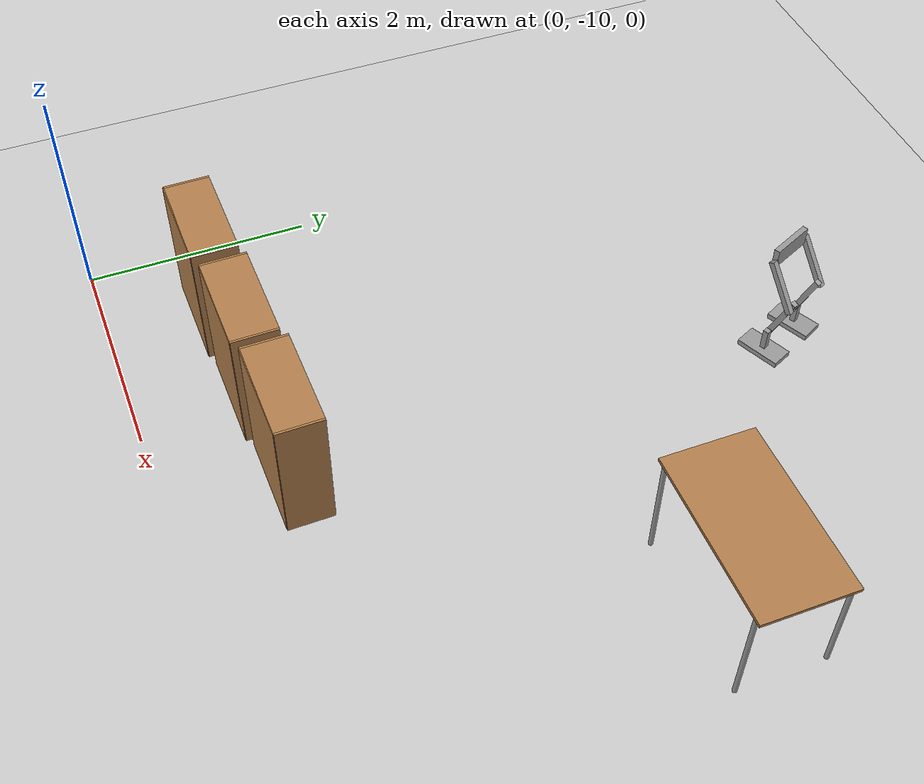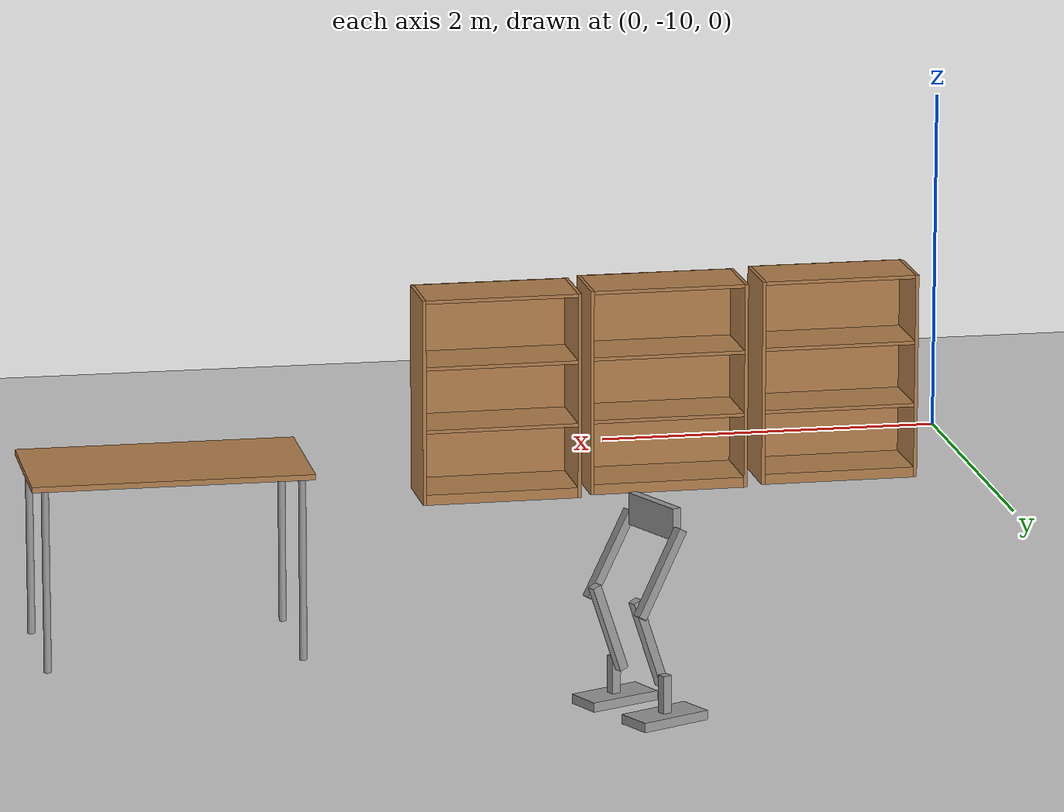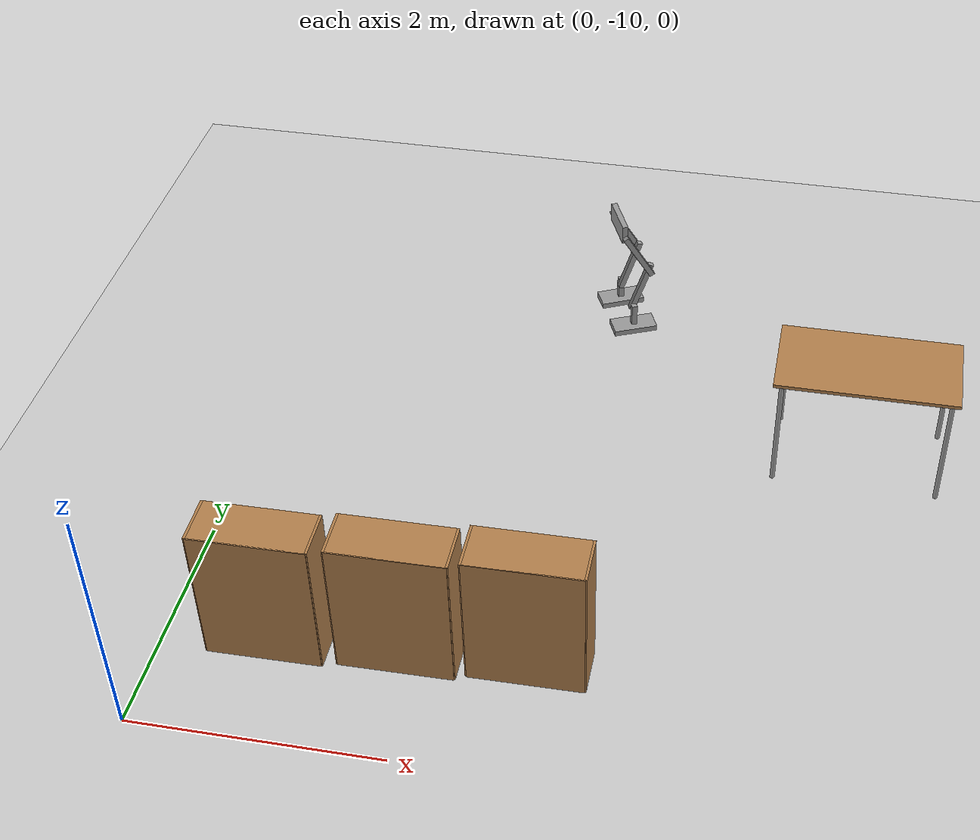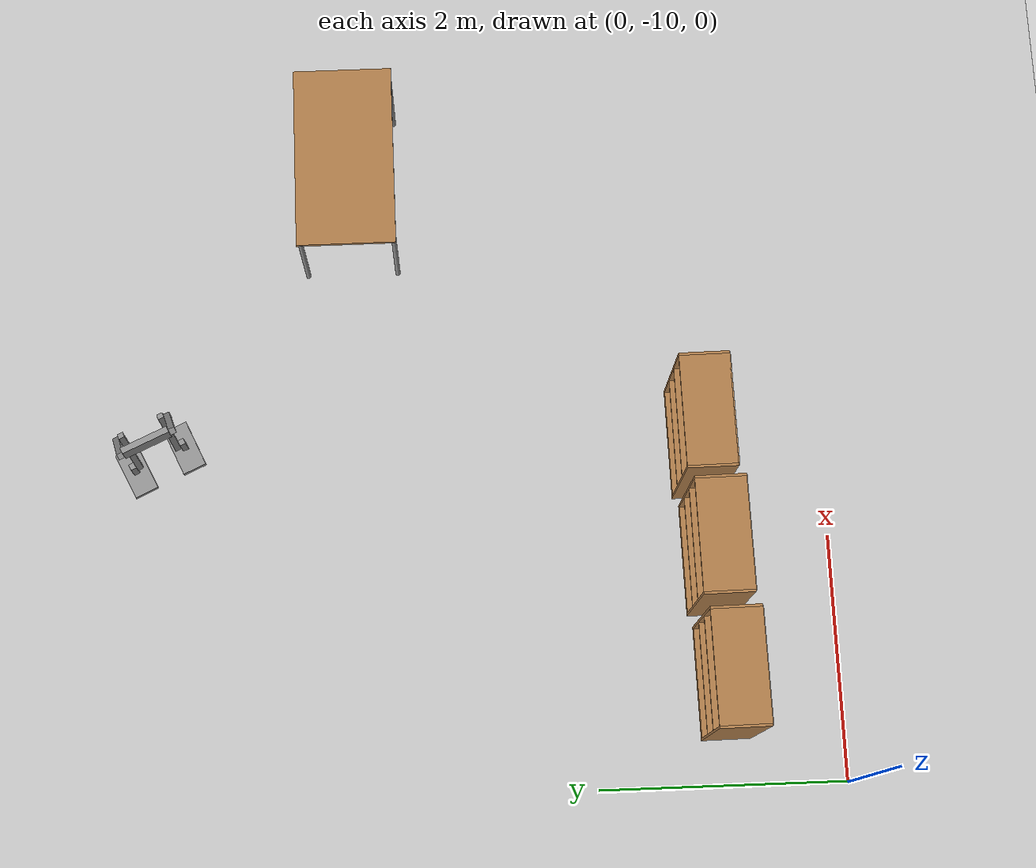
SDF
<sdf version="1.6">
 <world name="myworld">
  <model name="ground_plane">
   <static>1</static>
   <link name="link">
    <collision name="collision">
     <geometry><plane><normal>0 0 1</normal><size>100 100</size></plane></geometry>
     <surface><friction><ode><mu>100</mu><mu2>50</mu2></ode></friction></surface>
    </collision>
    <visual name="visual">
     <cast_shadows>0</cast_shadows>
     <geometry><plane><normal>0 0 1</normal><size>100 100</size></plane></geometry>
     <material>
      <script><uri>file://media/materials/scripts/gazebo.material</uri><name>Gazebo/Grey</name></script>
     </material>
    </visual>
   </link>
  </model>
  <model name="bookshelf">
   <static>1</static>
   <link name="link">
    <inertial><mass>1</mass></inertial>
    <collision name="back">
     <pose>0 0.005 0.6 0 -0 0</pose>
     <geometry><box><size>0.9 0.01 1.2</size></box></geometry>
    </collision>
    <visual name="visual1">
     <pose>0 0.005 0.6 0 -0 0</pose>
     <geometry><box><size>0.9 0.01 1.2</size></box></geometry>
     <material>
      <script><uri>file://media/materials/scripts/gazebo.material</uri><name>Gazebo/Wood</name></script>
     </material>
    </visual>
    <collision name="left_side">
     <pose>0.45 -0.195 0.6 0 -0 0</pose>
     <geometry><box><size>0.02 0.4 1.2</size></box></geometry>
    </collision>
    <visual name="visual2">
     <pose>0.45 -0.195 0.6 0 -0 0</pose>
     <geometry><box><size>0.02 0.4 1.2</size></box></geometry>
     <material>
      <script><uri>file://media/materials/scripts/gazebo.material</uri><name>Gazebo/Wood</name></script>
     </material>
    </visual>
    <collision name="right_side">
     <pose>-0.45 -0.195 0.6 0 -0 0</pose>
     <geometry><box><size>0.02 0.4 1.2</size></box></geometry>
    </collision>
    <visual name="visual3">
     <pose>-0.45 -0.195 0.6 0 -0 0</pose>
     <geometry><box><size>0.02 0.4 1.2</size></box></geometry>
     <material>
      <script><uri>file://media/materials/scripts/gazebo.material</uri><name>Gazebo/Wood</name></script>
     </material>
    </visual>
    <collision name="bottom">
     <pose>0 -0.195 0.03 0 -0 0</pose>
     <geometry><box><size>0.88 0.4 0.06</size></box></geometry>
    </collision>
    <visual name="visual4">
     <pose>0 -0.195 0.03 0 -0 0</pose>
     <geometry><box><size>0.88 0.4 0.06</size></box></geometry>
     <material>
      <script><uri>file://media/materials/scripts/gazebo.material</uri><name>Gazebo/Wood</name></script>
     </material>
    </visual>
    <collision name="top">
     <pose>0 -0.195 1.19 0 -0 0</pose>
     <geometry><box><size>0.88 0.4 0.02</size></box></geometry>
    </collision>
    <visual name="visual5">
     <pose>0 -0.195 1.19 0 -0 0</pose>
     <geometry><box><size>0.88 0.4 0.02</size></box></geometry>
     <material>
      <script><uri>file://media/materials/scripts/gazebo.material</uri><name>Gazebo/Wood</name></script>
     </material>
    </visual>
    <collision name="low_shelf">
     <pose>0 -0.195 0.43 0 -0 0</pose>
     <geometry><box><size>0.88 0.4 0.02</size></box></geometry>
    </collision>
    <visual name="visual6">
     <pose>0 -0.195 0.43 0 -0 0</pose>
     <geometry><box><size>0.88 0.4 0.02</size></box></geometry>
     <material>
      <script><uri>file://media/materials/scripts/gazebo.material</uri><name>Gazebo/Wood</name></script>
     </material>
    </visual>
    <collision name="high_shelf">
     <pose>0 -0.195 0.8 0 -0 0</pose>
     <geometry><box><size>0.88 0.4 0.02</size></box></geometry>
    </collision>
    <visual name="visual7">
     <pose>0 -0.195 0.8 0 -0 0</pose>
     <geometry><box><size>0.88 0.4 0.02</size></box></geometry>
     <material>
      <script><uri>file://media/materials/scripts/gazebo.material</uri><name>Gazebo/Wood</name></script>
     </material>
    </visual>
   </link>
   <pose>0.833883 -9.23444 0 0 0 -3.1294</pose>
  </model>
  <model name="bookshelf_clone_0">
   <static>1</static>
   <link name="link">
    <inertial><mass>1</mass></inertial>
    <collision name="back">
     <pose>0 0.005 0.6 0 -0 0</pose>
     <geometry><box><size>0.9 0.01 1.2</size></box></geometry>
    </collision>
    <visual name="visual1">
     <pose>0 0.005 0.6 0 -0 0</pose>
     <geometry><box><size>0.9 0.01 1.2</size></box></geometry>
     <material>
      <script><uri>file://media/materials/scripts/gazebo.material</uri><name>Gazebo/Wood</name></script>
     </material>
    </visual>
    <collision name="left_side">
     <pose>0.45 -0.195 0.6 0 -0 0</pose>
     <geometry><box><size>0.02 0.4 1.2</size></box></geometry>
    </collision>
    <visual name="visual2">
     <pose>0.45 -0.195 0.6 0 -0 0</pose>
     <geometry><box><size>0.02 0.4 1.2</size></box></geometry>
     <material>
      <script><uri>file://media/materials/scripts/gazebo.material</uri><name>Gazebo/Wood</name></script>
     </material>
    </visual>
    <collision name="right_side">
     <pose>-0.45 -0.195 0.6 0 -0 0</pose>
     <geometry><box><size>0.02 0.4 1.2</size></box></geometry>
    </collision>
    <visual name="visual3">
     <pose>-0.45 -0.195 0.6 0 -0 0</pose>
     <geometry><box><size>0.02 0.4 1.2</size></box></geometry>
     <material>
      <script><uri>file://media/materials/scripts/gazebo.material</uri><name>Gazebo/Wood</name></script>
     </material>
    </visual>
    <collision name="bottom">
     <pose>0 -0.195 0.03 0 -0 0</pose>
     <geometry><box><size>0.88 0.4 0.06</size></box></geometry>
    </collision>
    <visual name="visual4">
     <pose>0 -0.195 0.03 0 -0 0</pose>
     <geometry><box><size>0.88 0.4 0.06</size></box></geometry>
     <material>
      <script><uri>file://media/materials/scripts/gazebo.material</uri><name>Gazebo/Wood</name></script>
     </material>
    </visual>
    <collision name="top">
     <pose>0 -0.195 1.19 0 -0 0</pose>
     <geometry><box><size>0.88 0.4 0.02</size></box></geometry>
    </collision>
    <visual name="visual5">
     <pose>0 -0.195 1.19 0 -0 0</pose>
     <geometry><box><size>0.88 0.4 0.02</size></box></geometry>
     <material>
      <script><uri>file://media/materials/scripts/gazebo.material</uri><name>Gazebo/Wood</name></script>
     </material>
    </visual>
    <collision name="low_shelf">
     <pose>0 -0.195 0.43 0 -0 0</pose>
     <geometry><box><size>0.88 0.4 0.02</size></box></geometry>
    </collision>
    <visual name="visual6">
     <pose>0 -0.195 0.43 0 -0 0</pose>
     <geometry><box><size>0.88 0.4 0.02</size></box></geometry>
     <material>
      <script><uri>file://media/materials/scripts/gazebo.material</uri><name>Gazebo/Wood</name></script>
     </material>
    </visual>
    <collision name="high_shelf">
     <pose>0 -0.195 0.8 0 -0 0</pose>
     <geometry><box><size>0.88 0.4 0.02</size></box></geometry>
    </collision>
    <visual name="visual7">
     <pose>0 -0.195 0.8 0 -0 0</pose>
     <geometry><box><size>0.88 0.4 0.02</size></box></geometry>
     <material>
      <script><uri>file://media/materials/scripts/gazebo.material</uri><name>Gazebo/Wood</name></script>
     </material>
    </visual>
   </link>
   <pose>1.84603 -9.18341 0 0 0 -3.1294</pose>
  </model>
  <model name="bookshelf_clone_1">
   <static>1</static>
   <link name="link">
    <inertial><mass>1</mass></inertial>
    <collision name="back">
     <pose>0 0.005 0.6 0 -0 0</pose>
     <geometry><box><size>0.9 0.01 1.2</size></box></geometry>
    </collision>
    <visual name="visual1">
     <pose>0 0.005 0.6 0 -0 0</pose>
     <geometry><box><size>0.9 0.01 1.2</size></box></geometry>
     <material>
      <script><uri>file://media/materials/scripts/gazebo.material</uri><name>Gazebo/Wood</name></script>
     </material>
    </visual>
    <collision name="left_side">
     <pose>0.45 -0.195 0.6 0 -0 0</pose>
     <geometry><box><size>0.02 0.4 1.2</size></box></geometry>
    </collision>
    <visual name="visual2">
     <pose>0.45 -0.195 0.6 0 -0 0</pose>
     <geometry><box><size>0.02 0.4 1.2</size></box></geometry>
     <material>
      <script><uri>file://media/materials/scripts/gazebo.material</uri><name>Gazebo/Wood</name></script>
     </material>
    </visual>
    <collision name="right_side">
     <pose>-0.45 -0.195 0.6 0 -0 0</pose>
     <geometry><box><size>0.02 0.4 1.2</size></box></geometry>
    </collision>
    <visual name="visual3">
     <pose>-0.45 -0.195 0.6 0 -0 0</pose>
     <geometry><box><size>0.02 0.4 1.2</size></box></geometry>
     <material>
      <script><uri>file://media/materials/scripts/gazebo.material</uri><name>Gazebo/Wood</name></script>
     </material>
    </visual>
    <collision name="bottom">
     <pose>0 -0.195 0.03 0 -0 0</pose>
     <geometry><box><size>0.88 0.4 0.06</size></box></geometry>
    </collision>
    <visual name="visual4">
     <pose>0 -0.195 0.03 0 -0 0</pose>
     <geometry><box><size>0.88 0.4 0.06</size></box></geometry>
     <material>
      <script><uri>file://media/materials/scripts/gazebo.material</uri><name>Gazebo/Wood</name></script>
     </material>
    </visual>
    <collision name="top">
     <pose>0 -0.195 1.19 0 -0 0</pose>
     <geometry><box><size>0.88 0.4 0.02</size></box></geometry>
    </collision>
    <visual name="visual5">
     <pose>0 -0.195 1.19 0 -0 0</pose>
     <geometry><box><size>0.88 0.4 0.02</size></box></geometry>
     <material>
      <script><uri>file://media/materials/scripts/gazebo.material</uri><name>Gazebo/Wood</name></script>
     </material>
    </visual>
    <collision name="low_shelf">
     <pose>0 -0.195 0.43 0 -0 0</pose>
     <geometry><box><size>0.88 0.4 0.02</size></box></geometry>
    </collision>
    <visual name="visual6">
     <pose>0 -0.195 0.43 0 -0 0</pose>
     <geometry><box><size>0.88 0.4 0.02</size></box></geometry>
     <material>
      <script><uri>file://media/materials/scripts/gazebo.material</uri><name>Gazebo/Wood</name></script>
     </material>
    </visual>
    <collision name="high_shelf">
     <pose>0 -0.195 0.8 0 -0 0</pose>
     <geometry><box><size>0.88 0.4 0.02</size></box></geometry>
    </collision>
    <visual name="visual7">
     <pose>0 -0.195 0.8 0 -0 0</pose>
     <geometry><box><size>0.88 0.4 0.02</size></box></geometry>
     <material>
      <script><uri>file://media/materials/scripts/gazebo.material</uri><name>Gazebo/Wood</name></script>
     </material>
    </visual>
   </link>
   <pose>2.82821 -9.12331 0 0 0 -3.1294</pose>
  </model>
  <model name="table">
   <static>1</static>
   <link name="link">
    <collision name="surface">
     <pose>0 0 1 0 -0 0</pose>
     <geometry><box><size>1.5 0.8 0.03</size></box></geometry>
     <surface><friction><ode><mu>0.6</mu><mu2>0.6</mu2></ode></friction></surface>
    </collision>
    <visual name="visual1">
     <pose>0 0 1 0 -0 0</pose>
     <geometry><box><size>1.5 0.8 0.03</size></box></geometry>
     <material>
      <script><uri>file://media/materials/scripts/gazebo.material</uri><name>Gazebo/Wood</name></script>
     </material>
    </visual>
    <collision name="front_left_leg">
     <pose>0.68 0.38 0.5 0 -0 0</pose>
     <geometry><cylinder><radius>0.02</radius><length>1</length></cylinder></geometry>
    </collision>
    <visual name="front_left_leg">
     <pose>0.68 0.38 0.5 0 -0 0</pose>
     <geometry><cylinder><radius>0.02</radius><length>1</length></cylinder></geometry>
     <material>
      <script><uri>file://media/materials/scripts/gazebo.material</uri><name>Gazebo/Grey</name></script>
     </material>
    </visual>
    <collision name="front_right_leg">
     <pose>0.68 -0.38 0.5 0 -0 0</pose>
     <geometry><cylinder><radius>0.02</radius><length>1</length></cylinder></geometry>
    </collision>
    <visual name="front_right_leg">
     <pose>0.68 -0.38 0.5 0 -0 0</pose>
     <geometry><cylinder><radius>0.02</radius><length>1</length></cylinder></geometry>
     <material>
      <script><uri>file://media/materials/scripts/gazebo.material</uri><name>Gazebo/Grey</name></script>
     </material>
    </visual>
    <collision name="back_right_leg">
     <pose>-0.68 -0.38 0.5 0 -0 0</pose>
     <geometry><cylinder><radius>0.02</radius><length>1</length></cylinder></geometry>
    </collision>
    <visual name="back_right_leg">
     <pose>-0.68 -0.38 0.5 0 -0 0</pose>
     <geometry><cylinder><radius>0.02</radius><length>1</length></cylinder></geometry>
     <material>
      <script><uri>file://media/materials/scripts/gazebo.material</uri><name>Gazebo/Grey</name></script>
     </material>
    </visual>
    <collision name="back_left_leg">
     <pose>-0.68 0.38 0.5 0 -0 0</pose>
     <geometry><cylinder><radius>0.02</radius><length>1</length></cylinder></geometry>
    </collision>
    <visual name="back_left_leg">
     <pose>-0.68 0.38 0.5 0 -0 0</pose>
     <geometry><cylinder><radius>0.02</radius><length>1</length></cylinder></geometry>
     <material>
      <script><uri>file://media/materials/scripts/gazebo.material</uri><name>Gazebo/Grey</name></script>
     </material>
    </visual>
   </link>
   <pose>5.09693 -6.1392 0 0 -0 0</pose>
  </model>
  <model name="legs_clone">
   <link name="link_3">
    <pose>-0.025604 0.0125 -0.323607 0 -0 0</pose>
    <inertial>
     <mass>1</mass>
     <inertia>
      <ixx>0.166667</ixx>
      <ixy>0</ixy>
      <ixz>0</ixz>
      <iyy>0.166667</iyy>
      <iyz>0</iyz>
      <izz>0.166667</izz>
     </inertia>
    </inertial>
    <visual name="visual">
     <geometry><box><size>0.4 0.2 0.05</size></box></geometry>
     <material>
      <lighting>1</lighting>
      <script><uri>file://media/materials/scripts/gazebo.material</uri><name>Gazebo/Grey</name></script>
      <shader type="pixel"><normal_map>__default__</normal_map></shader>
      <ambient>0.3 0.3 0.3 1</ambient>
      <diffuse>0.7 0.7 0.7 1</diffuse>
      <specular>0.01 0.01 0.01 1</specular>
      <emissive>0 0 0 1</emissive>
     </material>
    </visual>
    <collision name="collision">
     <geometry><box><size>0.4 0.2 0.05</size></box></geometry>
     <surface>
      <friction>
       <ode><mu>1</mu><mu2>1</mu2><fdir1>0 0 0</fdir1><slip1>0</slip1><slip2>0</slip2></ode>
       <torsional>
        <coefficient>1</coefficient>
        <patch_radius>0</patch_radius>
        <surface_radius>0</surface_radius>
        <use_patch_radius>1</use_patch_radius>
        <ode><slip>0</slip></ode>
       </torsional>
      </friction>
      <bounce><restitution_coefficient>0</restitution_coefficient><threshold>1e+06</threshold></bounce>
      <contact>
       <collide_without_contact>0</collide_without_contact>
       <collide_without_contact_bitmask>1</collide_without_contact_bitmask>
       <collide_bitmask>1</collide_bitmask>
       <ode>
        <soft_cfm>0</soft_cfm>
        <soft_erp>0.2</soft_erp>
        <kp>1e+13</kp>
        <kd>1</kd>
        <max_vel>0.01</max_vel>
        <min_depth>0</min_depth>
       </ode>
       <bullet>
        <split_impulse>1</split_impulse>
        <split_impulse_penetration_threshold>-0.01</split_impulse_penetration_threshold>
        <soft_cfm>0</soft_cfm>
        <soft_erp>0.2</soft_erp>
        <kp>1e+13</kp>
        <kd>1</kd>
       </bullet>
      </contact>
     </surface>
    </collision>
   </link>
   <link name="link_3_clone">
    <pose>-0.025604 0.0125 -0.198607 0 -0 0</pose>
    <inertial>
     <mass>1</mass>
     <inertia>
      <ixx>0.166667</ixx>
      <ixy>0</ixy>
      <ixz>0</ixz>
      <iyy>0.166667</iyy>
      <iyz>0</iyz>
      <izz>0.166667</izz>
     </inertia>
    </inertial>
    <visual name="visual">
     <geometry><box><size>0.05 0.05 0.2</size></box></geometry>
     <material>
      <lighting>1</lighting>
      <script><uri>file://media/materials/scripts/gazebo.material</uri><name>Gazebo/Grey</name></script>
      <shader type="pixel"><normal_map>__default__</normal_map></shader>
      <ambient>0.3 0.3 0.3 1</ambient>
      <diffuse>0.7 0.7 0.7 1</diffuse>
      <specular>0.01 0.01 0.01 1</specular>
      <emissive>0 0 0 1</emissive>
     </material>
    </visual>
    <collision name="collision">
     <geometry><box><size>0.05 0.05 0.2</size></box></geometry>
     <surface>
      <friction>
       <ode><mu>1</mu><mu2>1</mu2><fdir1>0 0 0</fdir1><slip1>0</slip1><slip2>0</slip2></ode>
       <torsional>
        <coefficient>1</coefficient>
        <patch_radius>0</patch_radius>
        <surface_radius>0</surface_radius>
        <use_patch_radius>1</use_patch_radius>
        <ode><slip>0</slip></ode>
       </torsional>
      </friction>
      <bounce><restitution_coefficient>0</restitution_coefficient><threshold>1e+06</threshold></bounce>
      <contact>
       <collide_without_contact>0</collide_without_contact>
       <collide_without_contact_bitmask>1</collide_without_contact_bitmask>
       <collide_bitmask>1</collide_bitmask>
       <ode>
        <soft_cfm>0</soft_cfm>
        <soft_erp>0.2</soft_erp>
        <kp>1e+13</kp>
        <kd>1</kd>
        <max_vel>0.01</max_vel>
        <min_depth>0</min_depth>
       </ode>
       <bullet>
        <split_impulse>1</split_impulse>
        <split_impulse_penetration_threshold>-0.01</split_impulse_penetration_threshold>
        <soft_cfm>0</soft_cfm>
        <soft_erp>0.2</soft_erp>
        <kp>1e+13</kp>
        <kd>1</kd>
       </bullet>
      </contact>
     </surface>
    </collision>
   </link>
   <link name="link_3_clone_0">
    <pose>-0.032125 -0.429277 -0.323607 0 0 -0.027543</pose>
    <inertial>
     <mass>1</mass>
     <inertia>
      <ixx>0.166667</ixx>
      <ixy>0</ixy>
      <ixz>0</ixz>
      <iyy>0.166667</iyy>
      <iyz>0</iyz>
      <izz>0.166667</izz>
     </inertia>
    </inertial>
    <visual name="visual">
     <geometry><box><size>0.4 0.2 0.05</size></box></geometry>
     <material>
      <lighting>1</lighting>
      <script><uri>file://media/materials/scripts/gazebo.material</uri><name>Gazebo/Grey</name></script>
      <shader type="pixel"><normal_map>__default__</normal_map></shader>
      <ambient>0.3 0.3 0.3 1</ambient>
      <diffuse>0.7 0.7 0.7 1</diffuse>
      <specular>0.01 0.01 0.01 1</specular>
      <emissive>0 0 0 1</emissive>
     </material>
    </visual>
    <collision name="collision">
     <geometry><box><size>0.4 0.2 0.05</size></box></geometry>
     <surface>
      <friction>
       <ode><mu>1</mu><mu2>1</mu2><fdir1>0 0 0</fdir1><slip1>0</slip1><slip2>0</slip2></ode>
       <torsional>
        <coefficient>1</coefficient>
        <patch_radius>0</patch_radius>
        <surface_radius>0</surface_radius>
        <use_patch_radius>1</use_patch_radius>
        <ode><slip>0</slip></ode>
       </torsional>
      </friction>
      <bounce><restitution_coefficient>0</restitution_coefficient><threshold>1e+06</threshold></bounce>
      <contact>
       <collide_without_contact>0</collide_without_contact>
       <collide_without_contact_bitmask>1</collide_without_contact_bitmask>
       <collide_bitmask>1</collide_bitmask>
       <ode>
        <soft_cfm>0</soft_cfm>
        <soft_erp>0.2</soft_erp>
        <kp>1e+13</kp>
        <kd>1</kd>
        <max_vel>0.01</max_vel>
        <min_depth>0</min_depth>
       </ode>
       <bullet>
        <split_impulse>1</split_impulse>
        <split_impulse_penetration_threshold>-0.01</split_impulse_penetration_threshold>
        <soft_cfm>0</soft_cfm>
        <soft_erp>0.2</soft_erp>
        <kp>1e+13</kp>
        <kd>1</kd>
       </bullet>
      </contact>
     </surface>
    </collision>
   </link>
   <link name="link_3_clone_clone">
    <pose>0.043999 -0.0375 0.075459 0 0.35469 0</pose>
    <inertial>
     <mass>3.32557</mass>
     <inertia>
      <ixx>0.123285</ixx>
      <ixy>0</ixy>
      <ixz>0</ixz>
      <iyy>0.123285</iyy>
      <iyz>0</iyz>
      <izz>0.00138565</izz>
     </inertia>
    </inertial>
    <gravity>0</gravity>
    <visual name="visual">
     <geometry><box><size>0.05 0.05 0.5</size></box></geometry>
     <material>
      <lighting>1</lighting>
      <script><uri>file://media/materials/scripts/gazebo.material</uri><name>Gazebo/Grey</name></script>
      <shader type="pixel"><normal_map>__default__</normal_map></shader>
      <ambient>0.3 0.3 0.3 1</ambient>
      <diffuse>0.7 0.7 0.7 1</diffuse>
      <specular>0.01 0.01 0.01 1</specular>
      <emissive>0 0 0 1</emissive>
     </material>
    </visual>
    <collision name="collision">
     <geometry><box><size>0.05 0.05 0.5</size></box></geometry>
     <surface>
      <friction>
       <ode><mu>1</mu><mu2>1</mu2><fdir1>0 0 0</fdir1><slip1>0</slip1><slip2>0</slip2></ode>
       <torsional>
        <coefficient>1</coefficient>
        <patch_radius>0</patch_radius>
        <surface_radius>0</surface_radius>
        <use_patch_radius>1</use_patch_radius>
        <ode><slip>0</slip></ode>
       </torsional>
      </friction>
      <bounce><restitution_coefficient>0</restitution_coefficient><threshold>1e+06</threshold></bounce>
      <contact>
       <collide_without_contact>0</collide_without_contact>
       <collide_without_contact_bitmask>1</collide_without_contact_bitmask>
       <collide_bitmask>1</collide_bitmask>
       <ode>
        <soft_cfm>0</soft_cfm>
        <soft_erp>0.2</soft_erp>
        <kp>1e+13</kp>
        <kd>1</kd>
        <max_vel>0.01</max_vel>
        <min_depth>0</min_depth>
       </ode>
       <bullet>
        <split_impulse>1</split_impulse>
        <split_impulse_penetration_threshold>-0.01</split_impulse_penetration_threshold>
        <soft_cfm>0</soft_cfm>
        <soft_erp>0.2</soft_erp>
        <kp>1e+13</kp>
        <kd>1</kd>
       </bullet>
      </contact>
     </surface>
    </collision>
   </link>
   <link name="link_3_clone_clone_0">
    <pose>-0.121815 -0.209742 0.684075 0 0 -0.027543</pose>
    <inertial>
     <mass>6.61232</mass>
     <inertia>
      <ixx>0.100765</ixx>
      <ixy>0</ixy>
      <ixz>0</ixz>
      <iyy>0.0169584</iyy>
      <iyz>0</iyz>
      <izz>0.0865618</izz>
     </inertia>
    </inertial>
    <gravity>0</gravity>
    <visual name="visual">
     <geometry><box><size>0.05 0.393182 0.168154</size></box></geometry>
     <material>
      <lighting>1</lighting>
      <script><uri>file://media/materials/scripts/gazebo.material</uri><name>Gazebo/Grey</name></script>
      <shader type="pixel"><normal_map>__default__</normal_map></shader>
      <ambient>0.3 0.3 0.3 1</ambient>
      <diffuse>0.7 0.7 0.7 1</diffuse>
      <specular>0.01 0.01 0.01 1</specular>
      <emissive>0 0 0 1</emissive>
     </material>
    </visual>
    <collision name="collision">
     <geometry><box><size>0.05 0.393182 0.168154</size></box></geometry>
     <surface>
      <friction>
       <ode><mu>1</mu><mu2>1</mu2><fdir1>0 0 0</fdir1><slip1>0</slip1><slip2>0</slip2></ode>
       <torsional>
        <coefficient>1</coefficient>
        <patch_radius>0</patch_radius>
        <surface_radius>0</surface_radius>
        <use_patch_radius>1</use_patch_radius>
        <ode><slip>0</slip></ode>
       </torsional>
      </friction>
      <bounce><restitution_coefficient>0</restitution_coefficient><threshold>1e+06</threshold></bounce>
      <contact>
       <collide_without_contact>0</collide_without_contact>
       <collide_without_contact_bitmask>1</collide_without_contact_bitmask>
       <collide_bitmask>1</collide_bitmask>
       <ode>
        <soft_cfm>0</soft_cfm>
        <soft_erp>0.2</soft_erp>
        <kp>1e+13</kp>
        <kd>1</kd>
        <max_vel>0.01</max_vel>
        <min_depth>0</min_depth>
       </ode>
       <bullet>
        <split_impulse>1</split_impulse>
        <split_impulse_penetration_threshold>-0.01</split_impulse_penetration_threshold>
        <soft_cfm>0</soft_cfm>
        <soft_erp>0.2</soft_erp>
        <kp>1e+13</kp>
        <kd>1</kd>
       </bullet>
      </contact>
     </surface>
    </collision>
   </link>
   <link name="link_3_clone_clone_1">
    <pose>-0.030003 -0.43296 -0.198607 0 0 -0.027543</pose>
    <inertial>
     <mass>1</mass>
     <inertia>
      <ixx>0.166667</ixx>
      <ixy>0</ixy>
      <ixz>0</ixz>
      <iyy>0.166667</iyy>
      <iyz>0</iyz>
      <izz>0.166667</izz>
     </inertia>
    </inertial>
    <visual name="visual">
     <geometry><box><size>0.05 0.05 0.2</size></box></geometry>
     <material>
      <lighting>1</lighting>
      <script><uri>file://media/materials/scripts/gazebo.material</uri><name>Gazebo/Grey</name></script>
      <shader type="pixel"><normal_map>__default__</normal_map></shader>
      <ambient>0.3 0.3 0.3 1</ambient>
      <diffuse>0.7 0.7 0.7 1</diffuse>
      <specular>0.01 0.01 0.01 1</specular>
      <emissive>0 0 0 1</emissive>
     </material>
    </visual>
    <collision name="collision">
     <geometry><box><size>0.05 0.05 0.2</size></box></geometry>
     <surface>
      <friction>
       <ode><mu>1</mu><mu2>1</mu2><fdir1>0 0 0</fdir1><slip1>0</slip1><slip2>0</slip2></ode>
       <torsional>
        <coefficient>1</coefficient>
        <patch_radius>0</patch_radius>
        <surface_radius>0</surface_radius>
        <use_patch_radius>1</use_patch_radius>
        <ode><slip>0</slip></ode>
       </torsional>
      </friction>
      <bounce><restitution_coefficient>0</restitution_coefficient><threshold>1e+06</threshold></bounce>
      <contact>
       <collide_without_contact>0</collide_without_contact>
       <collide_without_contact_bitmask>1</collide_without_contact_bitmask>
       <collide_bitmask>1</collide_bitmask>
       <ode>
        <soft_cfm>0</soft_cfm>
        <soft_erp>0.2</soft_erp>
        <kp>1e+13</kp>
        <kd>1</kd>
        <max_vel>0.01</max_vel>
        <min_depth>0</min_depth>
       </ode>
       <bullet>
        <split_impulse>1</split_impulse>
        <split_impulse_penetration_threshold>-0.01</split_impulse_penetration_threshold>
        <soft_cfm>0</soft_cfm>
        <soft_erp>0.2</soft_erp>
        <kp>1e+13</kp>
        <kd>1</kd>
       </bullet>
      </contact>
     </surface>
    </collision>
   </link>
   <link name="link_3_clone_clone_clone">
    <pose>0.007207 0.0125 0.446756 0 -0.539922 0</pose>
    <inertial>
     <mass>3.32557</mass>
     <inertia>
      <ixx>0.123285</ixx>
      <ixy>0</ixy>
      <ixz>0</ixz>
      <iyy>0.123285</iyy>
      <iyz>0</iyz>
      <izz>0.00138565</izz>
     </inertia>
    </inertial>
    <gravity>0</gravity>
    <visual name="visual">
     <geometry><box><size>0.05 0.05 0.5</size></box></geometry>
     <material>
      <lighting>1</lighting>
      <script><uri>file://media/materials/scripts/gazebo.material</uri><name>Gazebo/Grey</name></script>
      <shader type="pixel"><normal_map>__default__</normal_map></shader>
      <ambient>0.3 0.3 0.3 1</ambient>
      <diffuse>0.7 0.7 0.7 1</diffuse>
      <specular>0.01 0.01 0.01 1</specular>
      <emissive>0 0 0 1</emissive>
     </material>
    </visual>
    <collision name="collision">
     <geometry><box><size>0.05 0.05 0.5</size></box></geometry>
     <surface>
      <friction>
       <ode><mu>1</mu><mu2>1</mu2><fdir1>0 0 0</fdir1><slip1>0</slip1><slip2>0</slip2></ode>
       <torsional>
        <coefficient>1</coefficient>
        <patch_radius>0</patch_radius>
        <surface_radius>0</surface_radius>
        <use_patch_radius>1</use_patch_radius>
        <ode><slip>0</slip></ode>
       </torsional>
      </friction>
      <bounce><restitution_coefficient>0</restitution_coefficient><threshold>1e+06</threshold></bounce>
      <contact>
       <collide_without_contact>0</collide_without_contact>
       <collide_without_contact_bitmask>1</collide_without_contact_bitmask>
       <collide_bitmask>1</collide_bitmask>
       <ode>
        <soft_cfm>0</soft_cfm>
        <soft_erp>0.2</soft_erp>
        <kp>1e+13</kp>
        <kd>1</kd>
        <max_vel>0.01</max_vel>
        <min_depth>0</min_depth>
       </ode>
       <bullet>
        <split_impulse>1</split_impulse>
        <split_impulse_penetration_threshold>-0.01</split_impulse_penetration_threshold>
        <soft_cfm>0</soft_cfm>
        <soft_erp>0.2</soft_erp>
        <kp>1e+13</kp>
        <kd>1</kd>
       </bullet>
      </contact>
     </surface>
    </collision>
   </link>
   <link name="link_3_clone_clone_clone_0">
    <pose>0.043514 -0.384966 0.075459 -0 0.354687 -0.027543</pose>
    <inertial>
     <mass>3.32557</mass>
     <inertia>
      <ixx>0.123285</ixx>
      <ixy>0</ixy>
      <ixz>0</ixz>
      <iyy>0.123285</iyy>
      <iyz>0</iyz>
      <izz>0.00138565</izz>
     </inertia>
    </inertial>
    <gravity>0</gravity>
    <visual name="visual">
     <geometry><box><size>0.05 0.05 0.5</size></box></geometry>
     <material>
      <lighting>1</lighting>
      <script><uri>file://media/materials/scripts/gazebo.material</uri><name>Gazebo/Grey</name></script>
      <shader type="pixel"><normal_map>__default__</normal_map></shader>
      <ambient>0.3 0.3 0.3 1</ambient>
      <diffuse>0.7 0.7 0.7 1</diffuse>
      <specular>0.01 0.01 0.01 1</specular>
      <emissive>0 0 0 1</emissive>
     </material>
    </visual>
    <collision name="collision">
     <geometry><box><size>0.05 0.05 0.5</size></box></geometry>
     <surface>
      <friction>
       <ode><mu>1</mu><mu2>1</mu2><fdir1>0 0 0</fdir1><slip1>0</slip1><slip2>0</slip2></ode>
       <torsional>
        <coefficient>1</coefficient>
        <patch_radius>0</patch_radius>
        <surface_radius>0</surface_radius>
        <use_patch_radius>1</use_patch_radius>
        <ode><slip>0</slip></ode>
       </torsional>
      </friction>
      <bounce><restitution_coefficient>0</restitution_coefficient><threshold>1e+06</threshold></bounce>
      <contact>
       <collide_without_contact>0</collide_without_contact>
       <collide_without_contact_bitmask>1</collide_without_contact_bitmask>
       <collide_bitmask>1</collide_bitmask>
       <ode>
        <soft_cfm>0</soft_cfm>
        <soft_erp>0.2</soft_erp>
        <kp>1e+13</kp>
        <kd>1</kd>
        <max_vel>0.01</max_vel>
        <min_depth>0</min_depth>
       </ode>
       <bullet>
        <split_impulse>1</split_impulse>
        <split_impulse_penetration_threshold>-0.01</split_impulse_penetration_threshold>
        <soft_cfm>0</soft_cfm>
        <soft_erp>0.2</soft_erp>
        <kp>1e+13</kp>
        <kd>1</kd>
       </bullet>
      </contact>
     </surface>
    </collision>
   </link>
   <link name="link_3_clone_clone_clone_clone">
    <pose>-0.000471 -0.433774 0.448999 0 -0.539886 -0.027543</pose>
    <inertial>
     <mass>3.32557</mass>
     <inertia>
      <ixx>0.123285</ixx>
      <ixy>0</ixy>
      <ixz>0</ixz>
      <iyy>0.123285</iyy>
      <iyz>0</iyz>
      <izz>0.00138565</izz>
     </inertia>
    </inertial>
    <gravity>0</gravity>
    <visual name="visual">
     <geometry><box><size>0.05 0.05 0.5</size></box></geometry>
     <material>
      <lighting>1</lighting>
      <script><uri>file://media/materials/scripts/gazebo.material</uri><name>Gazebo/Grey</name></script>
      <shader type="pixel"><normal_map>__default__</normal_map></shader>
      <ambient>0.3 0.3 0.3 1</ambient>
      <diffuse>0.7 0.7 0.7 1</diffuse>
      <specular>0.01 0.01 0.01 1</specular>
      <emissive>0 0 0 1</emissive>
     </material>
    </visual>
    <collision name="collision">
     <geometry><box><size>0.05 0.05 0.5</size></box></geometry>
     <surface>
      <friction>
       <ode><mu>1</mu><mu2>1</mu2><fdir1>0 0 0</fdir1><slip1>0</slip1><slip2>0</slip2></ode>
       <torsional>
        <coefficient>1</coefficient>
        <patch_radius>0</patch_radius>
        <surface_radius>0</surface_radius>
        <use_patch_radius>1</use_patch_radius>
        <ode><slip>0</slip></ode>
       </torsional>
      </friction>
      <bounce><restitution_coefficient>0</restitution_coefficient><threshold>1e+06</threshold></bounce>
      <contact>
       <collide_without_contact>0</collide_without_contact>
       <collide_without_contact_bitmask>1</collide_without_contact_bitmask>
       <collide_bitmask>1</collide_bitmask>
       <ode>
        <soft_cfm>0</soft_cfm>
        <soft_erp>0.2</soft_erp>
        <kp>1e+13</kp>
        <kd>1</kd>
        <max_vel>0.01</max_vel>
        <min_depth>0</min_depth>
       </ode>
       <bullet>
        <split_impulse>1</split_impulse>
        <split_impulse_penetration_threshold>-0.01</split_impulse_penetration_threshold>
        <soft_cfm>0</soft_cfm>
        <soft_erp>0.2</soft_erp>
        <kp>1e+13</kp>
        <kd>1</kd>
       </bullet>
      </contact>
     </surface>
    </collision>
   </link>
   <joint name="link_3_JOINT_10" type="fixed">
    <parent>link_3</parent>
    <child>link_3_clone</child>
    <physics>
     <ode><limit><cfm>0</cfm><erp>0.2</erp></limit><suspension><cfm>0</cfm><erp>0.2</erp></suspension></ode>
    </physics>
   </joint>
   <joint name="link_3_clone_JOINT_13" type="revolute">
    <parent>link_3_clone</parent>
    <child>link_3_clone_clone</child>
    <pose>0 0 -0.23 0 -0 0</pose>
    <axis>
     <xyz>0 1 0</xyz>
     <use_parent_model_frame>0</use_parent_model_frame>
     <limit>
      <lower>-1.79769e+308</lower>
      <upper>1.79769e+308</upper>
      <effort>-1</effort>
      <velocity>-1</velocity>
     </limit>
     <dynamics>
      <spring_reference>0</spring_reference>
      <spring_stiffness>0</spring_stiffness>
      <damping>0</damping>
      <friction>0</friction>
     </dynamics>
    </axis>
    <physics>
     <ode><limit><cfm>0</cfm><erp>0.2</erp></limit><suspension><cfm>0</cfm><erp>0.2</erp></suspension></ode>
    </physics>
   </joint>
   <joint name="link_3_clone_clone_0_JOINT_0" type="revolute">
    <parent>link_3_clone_clone_0</parent>
    <child>link_3_clone_clone_clone</child>
    <pose>0 0 0.23 0 -0 0</pose>
    <axis>
     <xyz>0 1 0</xyz>
     <use_parent_model_frame>0</use_parent_model_frame>
     <limit>
      <lower>-1.79769e+308</lower>
      <upper>1.79769e+308</upper>
      <effort>-1</effort>
      <velocity>-1</velocity>
     </limit>
     <dynamics>
      <spring_reference>0</spring_reference>
      <spring_stiffness>0</spring_stiffness>
      <damping>0</damping>
      <friction>0</friction>
     </dynamics>
    </axis>
    <physics>
     <ode><limit><cfm>0</cfm><erp>0.2</erp></limit><suspension><cfm>0</cfm><erp>0.2</erp></suspension></ode>
    </physics>
   </joint>
   <joint name="link_3_clone_clone_1_JOINT_4" type="fixed">
    <parent>link_3_clone_clone_1</parent>
    <child>link_3_clone_0</child>
    <physics>
     <ode><limit><cfm>0</cfm><erp>0.2</erp></limit><suspension><cfm>0</cfm><erp>0.2</erp></suspension></ode>
    </physics>
   </joint>
   <joint name="link_3_clone_clone_JOINT_14" type="revolute">
    <parent>link_3_clone_clone</parent>
    <child>link_3_clone_clone_clone</child>
    <pose>0 0 -0.23 0 -0 0</pose>
    <axis>
     <xyz>0 1 0</xyz>
     <use_parent_model_frame>0</use_parent_model_frame>
     <limit>
      <lower>-1.79769e+308</lower>
      <upper>1.79769e+308</upper>
      <effort>-1</effort>
      <velocity>-1</velocity>
     </limit>
     <dynamics>
      <spring_reference>0</spring_reference>
      <spring_stiffness>0</spring_stiffness>
      <damping>0</damping>
      <friction>0</friction>
     </dynamics>
    </axis>
    <physics>
     <ode><limit><cfm>0</cfm><erp>0.2</erp></limit><suspension><cfm>0</cfm><erp>0.2</erp></suspension></ode>
    </physics>
   </joint>
   <joint name="link_3_clone_clone_clone_0_JOINT_2" type="revolute">
    <parent>link_3_clone_clone_clone_0</parent>
    <child>link_3_clone_clone_clone_clone</child>
    <pose>0 0 -0.23 0 -0 0</pose>
    <axis>
     <xyz>0 1 0</xyz>
     <use_parent_model_frame>0</use_parent_model_frame>
     <limit>
      <lower>-1.79769e+308</lower>
      <upper>1.79769e+308</upper>
      <effort>-1</effort>
      <velocity>-1</velocity>
     </limit>
     <dynamics>
      <spring_reference>0</spring_reference>
      <spring_stiffness>0</spring_stiffness>
      <damping>0</damping>
      <friction>0</friction>
     </dynamics>
    </axis>
    <physics>
     <ode><limit><cfm>0</cfm><erp>0.2</erp></limit><suspension><cfm>0</cfm><erp>0.2</erp></suspension></ode>
    </physics>
   </joint>
   <joint name="link_3_clone_clone_clone_0_JOINT_3" type="revolute">
    <parent>link_3_clone_clone_1</parent>
    <child>link_3_clone_clone_clone_0</child>
    <pose>0 0 -0.23 0 -0 0</pose>
    <axis>
     <xyz>0 1 0</xyz>
     <use_parent_model_frame>0</use_parent_model_frame>
     <limit>
      <lower>-1.79769e+308</lower>
      <upper>1.79769e+308</upper>
      <effort>-1</effort>
      <velocity>-1</velocity>
     </limit>
     <dynamics>
      <spring_reference>0</spring_reference>
      <spring_stiffness>0</spring_stiffness>
      <damping>0</damping>
      <friction>0</friction>
     </dynamics>
    </axis>
    <physics>
     <ode><limit><cfm>0</cfm><erp>0.2</erp></limit><suspension><cfm>0</cfm><erp>0.2</erp></suspension></ode>
    </physics>
   </joint>
   <joint name="link_3_clone_clone_clone_clone_JOINT_1" type="revolute">
    <parent>link_3_clone_clone_0</parent>
    <child>link_3_clone_clone_clone_clone</child>
    <pose>0 0 0.23 0 -0 0</pose>
    <axis>
     <xyz>0 1 0</xyz>
     <use_parent_model_frame>0</use_parent_model_frame>
     <limit>
      <lower>-1.79769e+308</lower>
      <upper>1.79769e+308</upper>
      <effort>-1</effort>
      <velocity>-1</velocity>
     </limit>
     <dynamics>
      <spring_reference>0</spring_reference>
      <spring_stiffness>0</spring_stiffness>
      <damping>0</damping>
      <friction>0</friction>
     </dynamics>
    </axis>
    <physics>
     <ode><limit><cfm>0</cfm><erp>0.2</erp></limit><suspension><cfm>0</cfm><erp>0.2</erp></suspension></ode>
    </physics>
   </joint>
   <static>0</static>
   <pose>2.78396 -4.30115 0.348607 0 -0 0.449619</pose>
  </model>
 </world>
</sdf>
